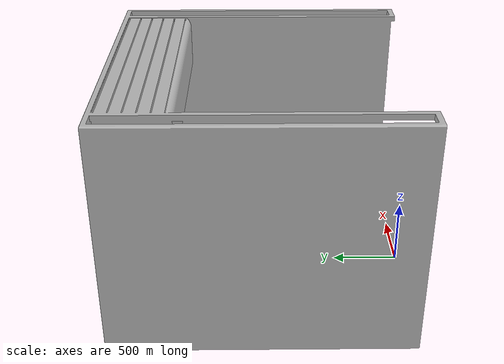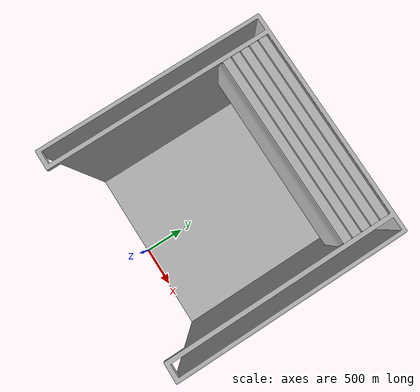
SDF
<?xml version='1.0'?>
<sdf version='1.7'>
  <model name='Punionica_MARINERO'>
    <link name='link'>
      <self_collide>0</self_collide>
      <gravity>1</gravity>
      <inertial>
        <mass>100</mass>
        <pose>0 0 0 0 0 0</pose>
        <inertia>
          <ixx>0</ixx>
          <ixy>0</ixy>
          <ixz>0</ixz>
          <iyy>0</iyy>
          <iyz>0</iyz>
          <izz>0</izz>
        </inertia>
      </inertial>
      <enable_wind>0</enable_wind>
      <kinematic>0</kinematic>
      <pose>0 0 1.26 0 0 0</pose>
      <visual name='visual'>
        <pose>0 0 0 0 0 0</pose>
        <geometry>
          <mesh>
            <uri>/marinero_simulations/models/punionica/meshes/Kucica_za_punjenje.dae</uri>
            <scale>1 1 1</scale>
          </mesh>
        </geometry>
        <transparency>0</transparency>
        <cast_shadows>1</cast_shadows>
      </visual>
      <collision name='collision'>
        <laser_retro>0</laser_retro>
        <max_contacts>10</max_contacts>
        <pose>0 0 0 0 0 0</pose>
        <geometry>
          <mesh>
            <uri>/marinero_simulations/models/punionica/meshes/Kucica_za_punjenje.dae</uri>
            <scale>1 1 1</scale>
          </mesh>
        </geometry>
        <surface>
          <friction>
            <ode>
              <mu>0.5</mu>
              <mu2>0.5</mu2>
            </ode>
            <torsional>
              <coefficient>1</coefficient>
              <patch_radius>0</patch_radius>
              <surface_radius>0</surface_radius>
              <use_patch_radius>1</use_patch_radius>
              <ode>
                <slip>0</slip>
              </ode>
            </torsional>
          </friction>
          <bounce>
            <restitution_coefficient>0</restitution_coefficient>
            <threshold>1000</threshold>
          </bounce>
          <contact>
            <collide_without_contact>0</collide_without_contact>
            <collide_without_contact_bitmask>0</collide_without_contact_bitmask>
            <collide_bitmask>1</collide_bitmask>
            <ode>
              <soft_cfm>0</soft_cfm>
              <soft_erp>0.2</soft_erp>
              <kp>1e+11</kp>
              <kd>100</kd>
              <max_vel>10</max_vel>
              <min_depth>0.001</min_depth>
            </ode>
            <bullet>
              <split_impulse>1</split_impulse>
              <split_impulse_penetration_threshold>-0.01</split_impulse_penetration_threshold>
              <soft_cfm>0</soft_cfm>
              <soft_erp>0.2</soft_erp>
              <kp>1e+11</kp>
              <kd>100</kd>
            </bullet>
          </contact>
        </surface>
      </collision>
    </link>
    <static>1</static>
    <allow_auto_disable>1</allow_auto_disable>
  </model>
</sdf>
